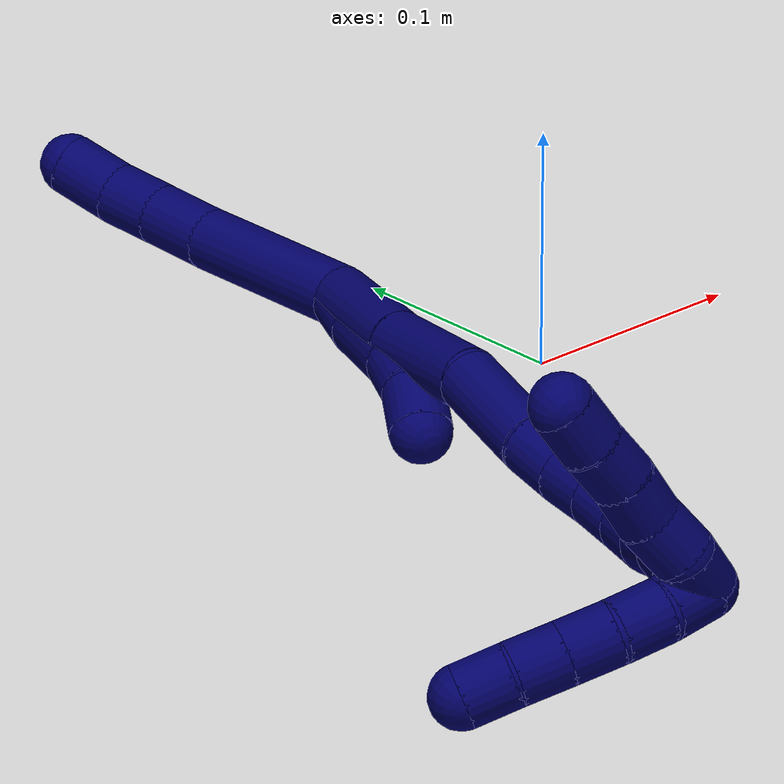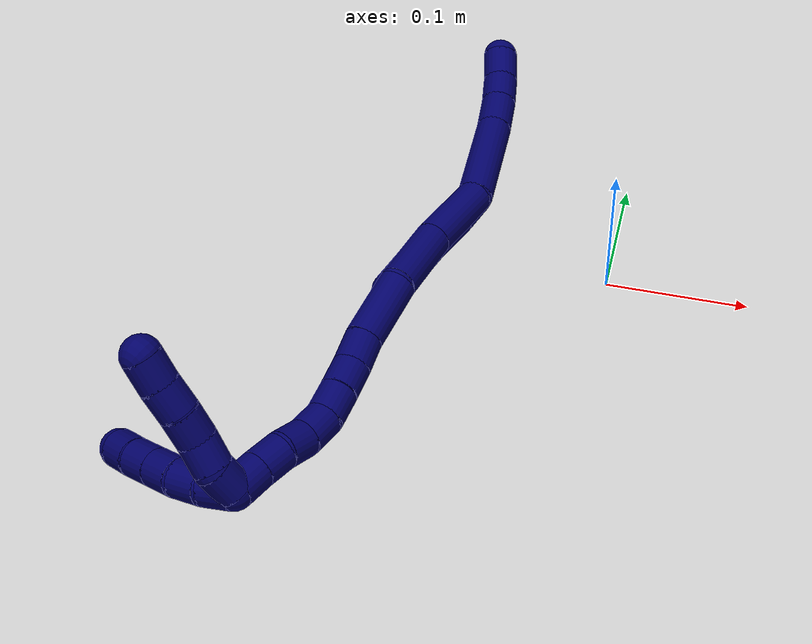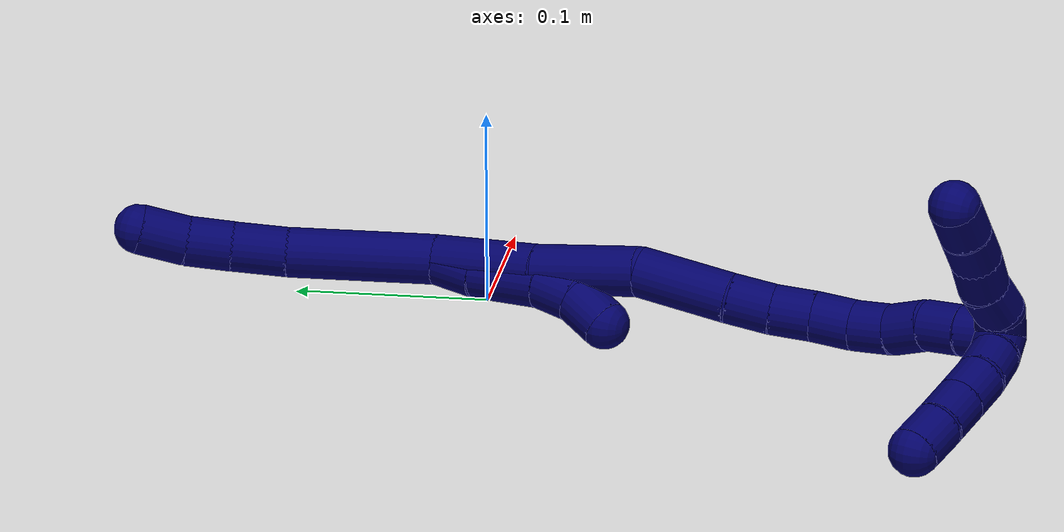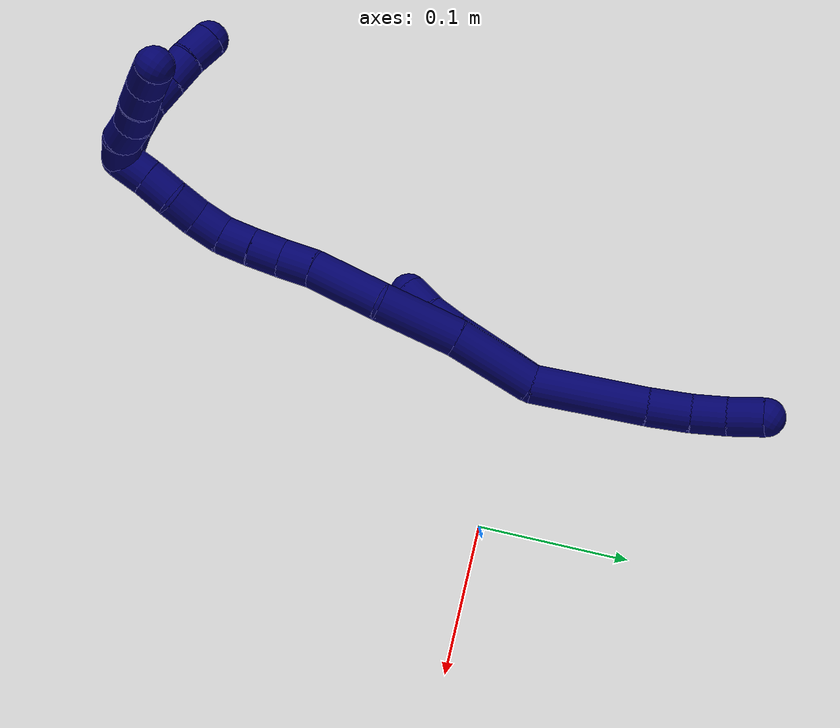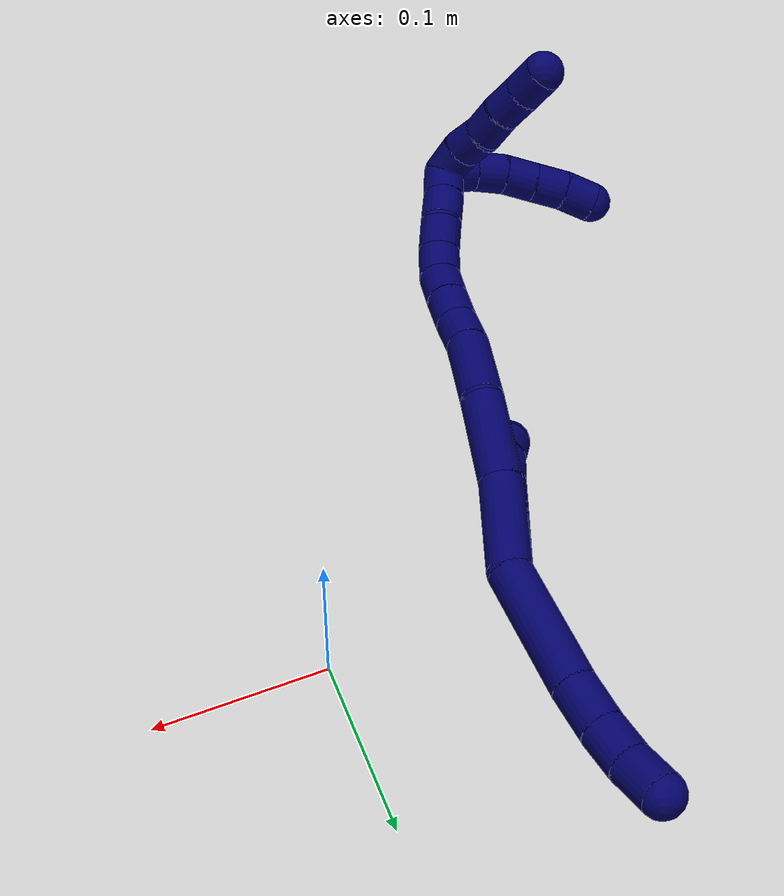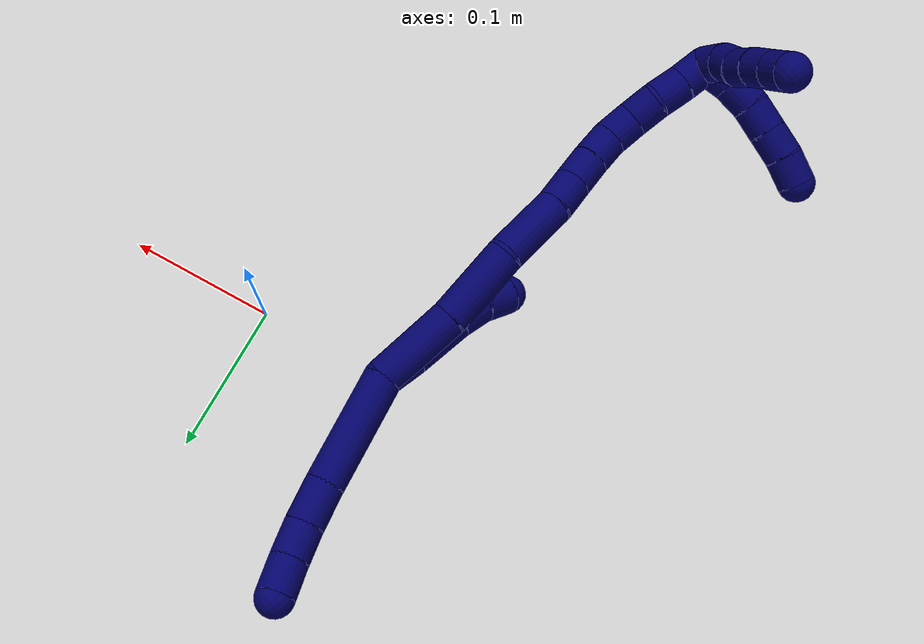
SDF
<sdf version="1.7">
 <world name="default">
  <model name="7">
   <static>0</static>
   <link name="7">
    <collision name="collision-cylinder-e_1_2_8">
     <pose>-0.007815 0.012279 -0.034353 -2.79832 -0.211029 1.09691</pose>
     <geometry><cylinder><radius>0.0125</radius><length>0.074618</length></cylinder></geometry>
     <surface>
      <friction><ode><mu>1.16</mu><mu2>1.16</mu2><slip1>0</slip1><slip2>0</slip2></ode></friction>
      <contact><ode><kp>1e+06</kp><kd>1</kd><max_vel>0</max_vel><min_depth>0.001</min_depth></ode></contact>
     </surface>
    </collision>
    <visual name="visual-cylinder-e_1_2_8">
     <pose>-0.007815 0.012279 -0.034353 -2.79832 -0.211029 1.09691</pose>
     <geometry><cylinder><radius>0.0125</radius><length>0.074618</length></cylinder></geometry>
     <material><ambient>0.003922 0 0.403922 1</ambient></material>
    </visual>
    <collision name="collision-cylinder-e_2_8_9">
     <pose>-0.017902 0.030134 -0.081321 -2.72537 -0.163243 0.739156</pose>
     <geometry><cylinder><radius>0.0125</radius><length>0.027958</length></cylinder></geometry>
     <surface>
      <friction><ode><mu>1.16</mu><mu2>1.16</mu2><slip1>0</slip1><slip2>0</slip2></ode></friction>
      <contact><ode><kp>1e+06</kp><kd>1</kd><max_vel>0</max_vel><min_depth>0.001</min_depth></ode></contact>
     </surface>
    </collision>
    <visual name="visual-cylinder-e_2_8_9">
     <pose>-0.017902 0.030134 -0.081321 -2.72537 -0.163243 0.739156</pose>
     <geometry><cylinder><radius>0.0125</radius><length>0.027958</length></cylinder></geometry>
     <material><ambient>0.003922 0 0.403922 1</ambient></material>
    </visual>
    <collision name="collision-cylinder-e_3_9_10">
     <pose>-0.021895 0.041173 -0.103977 -2.64333 -0.149444 0.572343</pose>
     <geometry><cylinder><radius>0.0125</radius><length>0.023118</length></cylinder></geometry>
     <surface>
      <friction><ode><mu>1.16</mu><mu2>1.16</mu2><slip1>0</slip1><slip2>0</slip2></ode></friction>
      <contact><ode><kp>1e+06</kp><kd>1</kd><max_vel>0</max_vel><min_depth>0.001</min_depth></ode></contact>
     </surface>
    </collision>
    <visual name="visual-cylinder-e_3_9_10">
     <pose>-0.021895 0.041173 -0.103977 -2.64333 -0.149444 0.572343</pose>
     <geometry><cylinder><radius>0.0125</radius><length>0.023118</length></cylinder></geometry>
     <material><ambient>0.003922 0 0.403922 1</ambient></material>
    </visual>
    <collision name="collision-cylinder-e_4_10_6">
     <pose>-0.024008 0.053639 -0.123942 -2.52701 -0.032296 0.10169</pose>
     <geometry><cylinder><radius>0.0125</radius><length>0.024306</length></cylinder></geometry>
     <surface>
      <friction><ode><mu>1.16</mu><mu2>1.16</mu2><slip1>0</slip1><slip2>0</slip2></ode></friction>
      <contact><ode><kp>1e+06</kp><kd>1</kd><max_vel>0</max_vel><min_depth>0.001</min_depth></ode></contact>
     </surface>
    </collision>
    <visual name="visual-cylinder-e_4_10_6">
     <pose>-0.024008 0.053639 -0.123942 -2.52701 -0.032296 0.10169</pose>
     <geometry><cylinder><radius>0.0125</radius><length>0.024306</length></cylinder></geometry>
     <material><ambient>0.003922 0 0.403922 1</ambient></material>
    </visual>
    <collision name="collision-cylinder-e_1_2_11">
     <pose>-0.000933 -0.00038 0.011569 0.032828 -0.080394 -0.00132</pose>
     <geometry><cylinder><radius>0.0125</radius><length>0.023225</length></cylinder></geometry>
     <surface>
      <friction><ode><mu>1.16</mu><mu2>1.16</mu2><slip1>0</slip1><slip2>0</slip2></ode></friction>
      <contact><ode><kp>1e+06</kp><kd>1</kd><max_vel>0</max_vel><min_depth>0.001</min_depth></ode></contact>
     </surface>
    </collision>
    <visual name="visual-cylinder-e_1_2_11">
     <pose>-0.000933 -0.00038 0.011569 0.032828 -0.080394 -0.00132</pose>
     <geometry><cylinder><radius>0.0125</radius><length>0.023225</length></cylinder></geometry>
     <material><ambient>0.003922 0 0.403922 1</ambient></material>
    </visual>
    <collision name="collision-cylinder-e_2_11_12">
     <pose>-0.000565 -0.000344 0.041103 -0.023119 0.072211 -0.000835</pose>
     <geometry><cylinder><radius>0.0125</radius><length>0.036034</length></cylinder></geometry>
     <surface>
      <friction><ode><mu>1.16</mu><mu2>1.16</mu2><slip1>0</slip1><slip2>0</slip2></ode></friction>
      <contact><ode><kp>1e+06</kp><kd>1</kd><max_vel>0</max_vel><min_depth>0.001</min_depth></ode></contact>
     </surface>
    </collision>
    <visual name="visual-cylinder-e_2_11_12">
     <pose>-0.000565 -0.000344 0.041103 -0.023119 0.072211 -0.000835</pose>
     <geometry><cylinder><radius>0.0125</radius><length>0.036034</length></cylinder></geometry>
     <material><ambient>0.003922 0 0.403922 1</ambient></material>
    </visual>
    <collision name="collision-cylinder-e_3_12_13">
     <pose>-0.000719 -0.000159 0.068981 0.023161 -0.145543 -0.001689</pose>
     <geometry><cylinder><radius>0.0125</radius><length>0.020042</length></cylinder></geometry>
     <surface>
      <friction><ode><mu>1.16</mu><mu2>1.16</mu2><slip1>0</slip1><slip2>0</slip2></ode></friction>
      <contact><ode><kp>1e+06</kp><kd>1</kd><max_vel>0</max_vel><min_depth>0.001</min_depth></ode></contact>
     </surface>
    </collision>
    <visual name="visual-cylinder-e_3_12_13">
     <pose>-0.000719 -0.000159 0.068981 0.023161 -0.145543 -0.001689</pose>
     <geometry><cylinder><radius>0.0125</radius><length>0.020042</length></cylinder></geometry>
     <material><ambient>0.003922 0 0.403922 1</ambient></material>
    </visual>
    <collision name="collision-cylinder-e_4_13_5">
     <pose>-0.006781 -0.000584 0.088158 0.021076 -0.461564 -0.004952</pose>
     <geometry><cylinder><radius>0.0125</radius><length>0.020698</length></cylinder></geometry>
     <surface>
      <friction><ode><mu>1.16</mu><mu2>1.16</mu2><slip1>0</slip1><slip2>0</slip2></ode></friction>
      <contact><ode><kp>1e+06</kp><kd>1</kd><max_vel>0</max_vel><min_depth>0.001</min_depth></ode></contact>
     </surface>
    </collision>
    <visual name="visual-cylinder-e_4_13_5">
     <pose>-0.006781 -0.000584 0.088158 0.021076 -0.461564 -0.004952</pose>
     <geometry><cylinder><radius>0.0125</radius><length>0.020698</length></cylinder></geometry>
     <material><ambient>0.003922 0 0.403922 1</ambient></material>
    </visual>
    <collision name="collision-cylinder-e_1_2_14">
     <pose>0.003426 0.000479 0.027573 -0.017388 0.123617 -0.001076</pose>
     <geometry><cylinder><radius>0.0125</radius><length>0.055578</length></cylinder></geometry>
     <surface>
      <friction><ode><mu>1.16</mu><mu2>1.16</mu2><slip1>0</slip1><slip2>0</slip2></ode></friction>
      <contact><ode><kp>1e+06</kp><kd>1</kd><max_vel>0</max_vel><min_depth>0.001</min_depth></ode></contact>
     </surface>
    </collision>
    <visual name="visual-cylinder-e_1_2_14">
     <pose>0.003426 0.000479 0.027573 -0.017388 0.123617 -0.001076</pose>
     <geometry><cylinder><radius>0.0125</radius><length>0.055578</length></cylinder></geometry>
     <material><ambient>0.003922 0 0.403922 1</ambient></material>
    </visual>
    <collision name="collision-cylinder-e_2_14_15">
     <pose>0.012283 -0.000933 0.081247 0.072344 0.204596 0.00743</pose>
     <geometry><cylinder><radius>0.0125</radius><length>0.053454</length></cylinder></geometry>
     <surface>
      <friction><ode><mu>1.16</mu><mu2>1.16</mu2><slip1>0</slip1><slip2>0</slip2></ode></friction>
      <contact><ode><kp>1e+06</kp><kd>1</kd><max_vel>0</max_vel><min_depth>0.001</min_depth></ode></contact>
     </surface>
    </collision>
    <visual name="visual-cylinder-e_2_14_15">
     <pose>0.012283 -0.000933 0.081247 0.072344 0.204596 0.00743</pose>
     <geometry><cylinder><radius>0.0125</radius><length>0.053454</length></cylinder></geometry>
     <material><ambient>0.003922 0 0.403922 1</ambient></material>
    </visual>
    <collision name="collision-cylinder-e_3_15_16">
     <pose>0.016833 -0.006868 0.130715 0.171353 -0.037118 -0.003188</pose>
     <geometry><cylinder><radius>0.0125</radius><length>0.04746</length></cylinder></geometry>
     <surface>
      <friction><ode><mu>1.16</mu><mu2>1.16</mu2><slip1>0</slip1><slip2>0</slip2></ode></friction>
      <contact><ode><kp>1e+06</kp><kd>1</kd><max_vel>0</max_vel><min_depth>0.001</min_depth></ode></contact>
     </surface>
    </collision>
    <visual name="visual-cylinder-e_3_15_16">
     <pose>0.016833 -0.006868 0.130715 0.171353 -0.037118 -0.003188</pose>
     <geometry><cylinder><radius>0.0125</radius><length>0.04746</length></cylinder></geometry>
     <material><ambient>0.003922 0 0.403922 1</ambient></material>
    </visual>
    <collision name="collision-cylinder-e_4_16_17">
     <pose>0.015967 -0.014085 0.164528 0.294917 0.001359 0.000202</pose>
     <geometry><cylinder><radius>0.0125</radius><length>0.021837</length></cylinder></geometry>
     <surface>
      <friction><ode><mu>1.16</mu><mu2>1.16</mu2><slip1>0</slip1><slip2>0</slip2></ode></friction>
      <contact><ode><kp>1e+06</kp><kd>1</kd><max_vel>0</max_vel><min_depth>0.001</min_depth></ode></contact>
     </surface>
    </collision>
    <visual name="visual-cylinder-e_4_16_17">
     <pose>0.015967 -0.014085 0.164528 0.294917 0.001359 0.000202</pose>
     <geometry><cylinder><radius>0.0125</radius><length>0.021837</length></cylinder></geometry>
     <material><ambient>0.003922 0 0.403922 1</ambient></material>
    </visual>
    <collision name="collision-cylinder-e_5_17_18">
     <pose>0.016846 -0.019581 0.185021 0.227204 0.08362 0.009546</pose>
     <geometry><cylinder><radius>0.0125</radius><length>0.020694</length></cylinder></geometry>
     <surface>
      <friction><ode><mu>1.16</mu><mu2>1.16</mu2><slip1>0</slip1><slip2>0</slip2></ode></friction>
      <contact><ode><kp>1e+06</kp><kd>1</kd><max_vel>0</max_vel><min_depth>0.001</min_depth></ode></contact>
     </surface>
    </collision>
    <visual name="visual-cylinder-e_5_17_18">
     <pose>0.016846 -0.019581 0.185021 0.227204 0.08362 0.009546</pose>
     <geometry><cylinder><radius>0.0125</radius><length>0.020694</length></cylinder></geometry>
     <material><ambient>0.003922 0 0.403922 1</ambient></material>
    </visual>
    <collision name="collision-cylinder-e_6_18_19">
     <pose>0.018033 -0.024015 0.205102 0.207367 0.031467 0.003275</pose>
     <geometry><cylinder><radius>0.0125</radius><length>0.02052</length></cylinder></geometry>
     <surface>
      <friction><ode><mu>1.16</mu><mu2>1.16</mu2><slip1>0</slip1><slip2>0</slip2></ode></friction>
      <contact><ode><kp>1e+06</kp><kd>1</kd><max_vel>0</max_vel><min_depth>0.001</min_depth></ode></contact>
     </surface>
    </collision>
    <visual name="visual-cylinder-e_6_18_19">
     <pose>0.018033 -0.024015 0.205102 0.207367 0.031467 0.003275</pose>
     <geometry><cylinder><radius>0.0125</radius><length>0.02052</length></cylinder></geometry>
     <material><ambient>0.003922 0 0.403922 1</ambient></material>
    </visual>
    <collision name="collision-cylinder-e_7_19_20">
     <pose>0.01946 -0.025644 0.225268 -0.047602 0.10845 -0.002584</pose>
     <geometry><cylinder><radius>0.0125</radius><length>0.020404</length></cylinder></geometry>
     <surface>
      <friction><ode><mu>1.16</mu><mu2>1.16</mu2><slip1>0</slip1><slip2>0</slip2></ode></friction>
      <contact><ode><kp>1e+06</kp><kd>1</kd><max_vel>0</max_vel><min_depth>0.001</min_depth></ode></contact>
     </surface>
    </collision>
    <visual name="visual-cylinder-e_7_19_20">
     <pose>0.01946 -0.025644 0.225268 -0.047602 0.10845 -0.002584</pose>
     <geometry><cylinder><radius>0.0125</radius><length>0.020404</length></cylinder></geometry>
     <material><ambient>0.003922 0 0.403922 1</ambient></material>
    </visual>
    <collision name="collision-cylinder-e_8_20_21">
     <pose>0.023352 -0.02282 0.244724 -0.245937 0.282188 -0.035106</pose>
     <geometry><cylinder><radius>0.0125</radius><length>0.020021</length></cylinder></geometry>
     <surface>
      <friction><ode><mu>1.16</mu><mu2>1.16</mu2><slip1>0</slip1><slip2>0</slip2></ode></friction>
      <contact><ode><kp>1e+06</kp><kd>1</kd><max_vel>0</max_vel><min_depth>0.001</min_depth></ode></contact>
     </surface>
    </collision>
    <visual name="visual-cylinder-e_8_20_21">
     <pose>0.023352 -0.02282 0.244724 -0.245937 0.282188 -0.035106</pose>
     <geometry><cylinder><radius>0.0125</radius><length>0.020021</length></cylinder></geometry>
     <material><ambient>0.003922 0 0.403922 1</ambient></material>
    </visual>
    <collision name="collision-cylinder-e_9_21_22">
     <pose>0.026789 -0.019031 0.263934 -0.145487 0.064923 -0.004733</pose>
     <geometry><cylinder><radius>0.0125</radius><length>0.020023</length></cylinder></geometry>
     <surface>
      <friction><ode><mu>1.16</mu><mu2>1.16</mu2><slip1>0</slip1><slip2>0</slip2></ode></friction>
      <contact><ode><kp>1e+06</kp><kd>1</kd><max_vel>0</max_vel><min_depth>0.001</min_depth></ode></contact>
     </surface>
    </collision>
    <visual name="visual-cylinder-e_9_21_22">
     <pose>0.026789 -0.019031 0.263934 -0.145487 0.064923 -0.004733</pose>
     <geometry><cylinder><radius>0.0125</radius><length>0.020023</length></cylinder></geometry>
     <material><ambient>0.003922 0 0.403922 1</ambient></material>
    </visual>
    <collision name="collision-cylinder-e_10_22_1">
     <pose>0.028459 -0.016697 0.283732 -0.089054 0.102157 -0.004556</pose>
     <geometry><cylinder><radius>0.0125</radius><length>0.020008</length></cylinder></geometry>
     <surface>
      <friction><ode><mu>1.16</mu><mu2>1.16</mu2><slip1>0</slip1><slip2>0</slip2></ode></friction>
      <contact><ode><kp>1e+06</kp><kd>1</kd><max_vel>0</max_vel><min_depth>0.001</min_depth></ode></contact>
     </surface>
    </collision>
    <visual name="visual-cylinder-e_10_22_1">
     <pose>0.028459 -0.016697 0.283732 -0.089054 0.102157 -0.004556</pose>
     <geometry><cylinder><radius>0.0125</radius><length>0.020008</length></cylinder></geometry>
     <material><ambient>0.003922 0 0.403922 1</ambient></material>
    </visual>
    <collision name="collision-cylinder-e_1_1_23">
     <pose>0.023544 -0.008271 0.296455 -1.21409 -0.635371 0.449051</pose>
     <geometry><cylinder><radius>0.0125</radius><length>0.02</length></cylinder></geometry>
     <surface>
      <friction><ode><mu>1.16</mu><mu2>1.16</mu2><slip1>0</slip1><slip2>0</slip2></ode></friction>
      <contact><ode><kp>1e+06</kp><kd>1</kd><max_vel>0</max_vel><min_depth>0.001</min_depth></ode></contact>
     </surface>
    </collision>
    <visual name="visual-cylinder-e_1_1_23">
     <pose>0.023544 -0.008271 0.296455 -1.21409 -0.635371 0.449051</pose>
     <geometry><cylinder><radius>0.0125</radius><length>0.02</length></cylinder></geometry>
     <material><ambient>0.003922 0 0.403922 1</ambient></material>
    </visual>
    <collision name="collision-cylinder-e_2_23_24">
     <pose>0.011217 0.006892 0.300301 -1.43566 -0.693466 0.611278</pose>
     <geometry><cylinder><radius>0.0125</radius><length>0.02</length></cylinder></geometry>
     <surface>
      <friction><ode><mu>1.16</mu><mu2>1.16</mu2><slip1>0</slip1><slip2>0</slip2></ode></friction>
      <contact><ode><kp>1e+06</kp><kd>1</kd><max_vel>0</max_vel><min_depth>0.001</min_depth></ode></contact>
     </surface>
    </collision>
    <visual name="visual-cylinder-e_2_23_24">
     <pose>0.011217 0.006892 0.300301 -1.43566 -0.693466 0.611278</pose>
     <geometry><cylinder><radius>0.0125</radius><length>0.02</length></cylinder></geometry>
     <material><ambient>0.003922 0 0.403922 1</ambient></material>
    </visual>
    <collision name="collision-cylinder-e_3_24_25">
     <pose>-0.002167 0.021634 0.300718 -1.65754 -0.774346 0.836965</pose>
     <geometry><cylinder><radius>0.0125</radius><length>0.02</length></cylinder></geometry>
     <surface>
      <friction><ode><mu>1.16</mu><mu2>1.16</mu2><slip1>0</slip1><slip2>0</slip2></ode></friction>
      <contact><ode><kp>1e+06</kp><kd>1</kd><max_vel>0</max_vel><min_depth>0.001</min_depth></ode></contact>
     </surface>
    </collision>
    <visual name="visual-cylinder-e_3_24_25">
     <pose>-0.002167 0.021634 0.300718 -1.65754 -0.774346 0.836965</pose>
     <geometry><cylinder><radius>0.0125</radius><length>0.02</length></cylinder></geometry>
     <material><ambient>0.003922 0 0.403922 1</ambient></material>
    </visual>
    <collision name="collision-cylinder-e_4_25_26">
     <pose>-0.016089 0.035939 0.299469 -1.65824 -0.765469 0.828052</pose>
     <geometry><cylinder><radius>0.0125</radius><length>0.02</length></cylinder></geometry>
     <surface>
      <friction><ode><mu>1.16</mu><mu2>1.16</mu2><slip1>0</slip1><slip2>0</slip2></ode></friction>
      <contact><ode><kp>1e+06</kp><kd>1</kd><max_vel>0</max_vel><min_depth>0.001</min_depth></ode></contact>
     </surface>
    </collision>
    <visual name="visual-cylinder-e_4_25_26">
     <pose>-0.016089 0.035939 0.299469 -1.65824 -0.765469 0.828052</pose>
     <geometry><cylinder><radius>0.0125</radius><length>0.02</length></cylinder></geometry>
     <material><ambient>0.003922 0 0.403922 1</ambient></material>
    </visual>
    <collision name="collision-cylinder-e_5_26_4">
     <pose>-0.030519 0.049538 0.297243 -1.81455 -0.848383 1.04769</pose>
     <geometry><cylinder><radius>0.0125</radius><length>0.02</length></cylinder></geometry>
     <surface>
      <friction><ode><mu>1.16</mu><mu2>1.16</mu2><slip1>0</slip1><slip2>0</slip2></ode></friction>
      <contact><ode><kp>1e+06</kp><kd>1</kd><max_vel>0</max_vel><min_depth>0.001</min_depth></ode></contact>
     </surface>
    </collision>
    <visual name="visual-cylinder-e_5_26_4">
     <pose>-0.030519 0.049538 0.297243 -1.81455 -0.848383 1.04769</pose>
     <geometry><cylinder><radius>0.0125</radius><length>0.02</length></cylinder></geometry>
     <material><ambient>0.003922 0 0.403922 1</ambient></material>
    </visual>
    <collision name="collision-cylinder-e_1_1_27">
     <pose>0.034451 -0.007255 0.295073 -1.40534 0.520407 -0.443519</pose>
     <geometry><cylinder><radius>0.0125</radius><length>0.02</length></cylinder></geometry>
     <surface>
      <friction><ode><mu>1.16</mu><mu2>1.16</mu2><slip1>0</slip1><slip2>0</slip2></ode></friction>
      <contact><ode><kp>1e+06</kp><kd>1</kd><max_vel>0</max_vel><min_depth>0.001</min_depth></ode></contact>
     </surface>
    </collision>
    <visual name="visual-cylinder-e_1_1_27">
     <pose>0.034451 -0.007255 0.295073 -1.40534 0.520407 -0.443519</pose>
     <geometry><cylinder><radius>0.0125</radius><length>0.02</length></cylinder></geometry>
     <material><ambient>0.003922 0 0.403922 1</ambient></material>
    </visual>
    <collision name="collision-cylinder-e_2_27_28">
     <pose>0.043273 0.010362 0.294739 -1.76302 0.395198 -0.476638</pose>
     <geometry><cylinder><radius>0.0125</radius><length>0.02</length></cylinder></geometry>
     <surface>
      <friction><ode><mu>1.16</mu><mu2>1.16</mu2><slip1>0</slip1><slip2>0</slip2></ode></friction>
      <contact><ode><kp>1e+06</kp><kd>1</kd><max_vel>0</max_vel><min_depth>0.001</min_depth></ode></contact>
     </surface>
    </collision>
    <visual name="visual-cylinder-e_2_27_28">
     <pose>0.043273 0.010362 0.294739 -1.76302 0.395198 -0.476638</pose>
     <geometry><cylinder><radius>0.0125</radius><length>0.02</length></cylinder></geometry>
     <material><ambient>0.003922 0 0.403922 1</ambient></material>
    </visual>
    <collision name="collision-cylinder-e_3_28_29">
     <pose>0.052339 0.027947 0.292628 -1.61159 0.548664 -0.570317</pose>
     <geometry><cylinder><radius>0.0125</radius><length>0.02</length></cylinder></geometry>
     <surface>
      <friction><ode><mu>1.16</mu><mu2>1.16</mu2><slip1>0</slip1><slip2>0</slip2></ode></friction>
      <contact><ode><kp>1e+06</kp><kd>1</kd><max_vel>0</max_vel><min_depth>0.001</min_depth></ode></contact>
     </surface>
    </collision>
    <visual name="visual-cylinder-e_3_28_29">
     <pose>0.052339 0.027947 0.292628 -1.61159 0.548664 -0.570317</pose>
     <geometry><cylinder><radius>0.0125</radius><length>0.02</length></cylinder></geometry>
     <material><ambient>0.003922 0 0.403922 1</ambient></material>
    </visual>
    <collision name="collision-cylinder-e_4_29_30">
     <pose>0.061783 0.045526 0.291913 -1.6113 0.436663 -0.454117</pose>
     <geometry><cylinder><radius>0.0125</radius><length>0.02</length></cylinder></geometry>
     <surface>
      <friction><ode><mu>1.16</mu><mu2>1.16</mu2><slip1>0</slip1><slip2>0</slip2></ode></friction>
      <contact><ode><kp>1e+06</kp><kd>1</kd><max_vel>0</max_vel><min_depth>0.001</min_depth></ode></contact>
     </surface>
    </collision>
    <visual name="visual-cylinder-e_4_29_30">
     <pose>0.061783 0.045526 0.291913 -1.6113 0.436663 -0.454117</pose>
     <geometry><cylinder><radius>0.0125</radius><length>0.02</length></cylinder></geometry>
     <material><ambient>0.003922 0 0.403922 1</ambient></material>
    </visual>
    <collision name="collision-cylinder-e_5_30_3">
     <pose>0.070755 0.063343 0.290704 -1.66662 0.494153 -0.541631</pose>
     <geometry><cylinder><radius>0.0125</radius><length>0.02</length></cylinder></geometry>
     <surface>
      <friction><ode><mu>1.16</mu><mu2>1.16</mu2><slip1>0</slip1><slip2>0</slip2></ode></friction>
      <contact><ode><kp>1e+06</kp><kd>1</kd><max_vel>0</max_vel><min_depth>0.001</min_depth></ode></contact>
     </surface>
    </collision>
    <visual name="visual-cylinder-e_5_30_3">
     <pose>0.070755 0.063343 0.290704 -1.66662 0.494153 -0.541631</pose>
     <geometry><cylinder><radius>0.0125</radius><length>0.02</length></cylinder></geometry>
     <material><ambient>0.003922 0 0.403922 1</ambient></material>
    </visual>
    <collision name="collision-sphere-3">
     <pose>0.075498 0.072107 0.289861 0 -0 0</pose>
     <geometry><sphere><radius>0.0125</radius></sphere></geometry>
     <surface>
      <friction><ode><mu>1.16</mu><mu2>1.16</mu2><slip1>0</slip1><slip2>0</slip2></ode></friction>
      <contact><ode><kp>1e+06</kp><kd>1</kd><max_vel>0</max_vel><min_depth>0.001</min_depth></ode></contact>
     </surface>
    </collision>
    <visual name="visual-sphere-3">
     <pose>0.075498 0.072107 0.289861 0 -0 0</pose>
     <geometry><sphere><radius>0.0125</radius></sphere></geometry>
     <material><ambient>0.003922 0 0.403922 1</ambient></material>
    </visual>
    <collision name="collision-sphere-30">
     <pose>0.066013 0.05458 0.291546 0 -0 0</pose>
     <geometry><sphere><radius>0.0125</radius></sphere></geometry>
     <surface>
      <friction><ode><mu>1.16</mu><mu2>1.16</mu2><slip1>0</slip1><slip2>0</slip2></ode></friction>
      <contact><ode><kp>1e+06</kp><kd>1</kd><max_vel>0</max_vel><min_depth>0.001</min_depth></ode></contact>
     </surface>
    </collision>
    <visual name="visual-sphere-30">
     <pose>0.066013 0.05458 0.291546 0 -0 0</pose>
     <geometry><sphere><radius>0.0125</radius></sphere></geometry>
     <material><ambient>0.003922 0 0.403922 1</ambient></material>
    </visual>
    <collision name="collision-sphere-29">
     <pose>0.057554 0.036472 0.29228 0 -0 0</pose>
     <geometry><sphere><radius>0.0125</radius></sphere></geometry>
     <surface>
      <friction><ode><mu>1.16</mu><mu2>1.16</mu2><slip1>0</slip1><slip2>0</slip2></ode></friction>
      <contact><ode><kp>1e+06</kp><kd>1</kd><max_vel>0</max_vel><min_depth>0.001</min_depth></ode></contact>
     </surface>
    </collision>
    <visual name="visual-sphere-29">
     <pose>0.057554 0.036472 0.29228 0 -0 0</pose>
     <geometry><sphere><radius>0.0125</radius></sphere></geometry>
     <material><ambient>0.003922 0 0.403922 1</ambient></material>
    </visual>
    <collision name="collision-sphere-28">
     <pose>0.047123 0.019421 0.292976 0 -0 0</pose>
     <geometry><sphere><radius>0.0125</radius></sphere></geometry>
     <surface>
      <friction><ode><mu>1.16</mu><mu2>1.16</mu2><slip1>0</slip1><slip2>0</slip2></ode></friction>
      <contact><ode><kp>1e+06</kp><kd>1</kd><max_vel>0</max_vel><min_depth>0.001</min_depth></ode></contact>
     </surface>
    </collision>
    <visual name="visual-sphere-28">
     <pose>0.047123 0.019421 0.292976 0 -0 0</pose>
     <geometry><sphere><radius>0.0125</radius></sphere></geometry>
     <material><ambient>0.003922 0 0.403922 1</ambient></material>
    </visual>
    <collision name="collision-sphere-27">
     <pose>0.039423 0.001303 0.296502 0 -0 0</pose>
     <geometry><sphere><radius>0.0125</radius></sphere></geometry>
     <surface>
      <friction><ode><mu>1.16</mu><mu2>1.16</mu2><slip1>0</slip1><slip2>0</slip2></ode></friction>
      <contact><ode><kp>1e+06</kp><kd>1</kd><max_vel>0</max_vel><min_depth>0.001</min_depth></ode></contact>
     </surface>
    </collision>
    <visual name="visual-sphere-27">
     <pose>0.039423 0.001303 0.296502 0 -0 0</pose>
     <geometry><sphere><radius>0.0125</radius></sphere></geometry>
     <material><ambient>0.003922 0 0.403922 1</ambient></material>
    </visual>
    <collision name="collision-sphere-4">
     <pose>-0.038022 0.055955 0.295648 0 -0 0</pose>
     <geometry><sphere><radius>0.0125</radius></sphere></geometry>
     <surface>
      <friction><ode><mu>1.16</mu><mu2>1.16</mu2><slip1>0</slip1><slip2>0</slip2></ode></friction>
      <contact><ode><kp>1e+06</kp><kd>1</kd><max_vel>0</max_vel><min_depth>0.001</min_depth></ode></contact>
     </surface>
    </collision>
    <visual name="visual-sphere-4">
     <pose>-0.038022 0.055955 0.295648 0 -0 0</pose>
     <geometry><sphere><radius>0.0125</radius></sphere></geometry>
     <material><ambient>0.003922 0 0.403922 1</ambient></material>
    </visual>
    <collision name="collision-sphere-26">
     <pose>-0.023017 0.043122 0.298839 0 -0 0</pose>
     <geometry><sphere><radius>0.0125</radius></sphere></geometry>
     <surface>
      <friction><ode><mu>1.16</mu><mu2>1.16</mu2><slip1>0</slip1><slip2>0</slip2></ode></friction>
      <contact><ode><kp>1e+06</kp><kd>1</kd><max_vel>0</max_vel><min_depth>0.001</min_depth></ode></contact>
     </surface>
    </collision>
    <visual name="visual-sphere-26">
     <pose>-0.023017 0.043122 0.298839 0 -0 0</pose>
     <geometry><sphere><radius>0.0125</radius></sphere></geometry>
     <material><ambient>0.003922 0 0.403922 1</ambient></material>
    </visual>
    <collision name="collision-sphere-25">
     <pose>-0.00916 0.028756 0.300099 0 -0 0</pose>
     <geometry><sphere><radius>0.0125</radius></sphere></geometry>
     <surface>
      <friction><ode><mu>1.16</mu><mu2>1.16</mu2><slip1>0</slip1><slip2>0</slip2></ode></friction>
      <contact><ode><kp>1e+06</kp><kd>1</kd><max_vel>0</max_vel><min_depth>0.001</min_depth></ode></contact>
     </surface>
    </collision>
    <visual name="visual-sphere-25">
     <pose>-0.00916 0.028756 0.300099 0 -0 0</pose>
     <geometry><sphere><radius>0.0125</radius></sphere></geometry>
     <material><ambient>0.003922 0 0.403922 1</ambient></material>
    </visual>
    <collision name="collision-sphere-24">
     <pose>0.004825 0.014512 0.301337 0 -0 0</pose>
     <geometry><sphere><radius>0.0125</radius></sphere></geometry>
     <surface>
      <friction><ode><mu>1.16</mu><mu2>1.16</mu2><slip1>0</slip1><slip2>0</slip2></ode></friction>
      <contact><ode><kp>1e+06</kp><kd>1</kd><max_vel>0</max_vel><min_depth>0.001</min_depth></ode></contact>
     </surface>
    </collision>
    <visual name="visual-sphere-24">
     <pose>0.004825 0.014512 0.301337 0 -0 0</pose>
     <geometry><sphere><radius>0.0125</radius></sphere></geometry>
     <material><ambient>0.003922 0 0.403922 1</ambient></material>
    </visual>
    <collision name="collision-sphere-23">
     <pose>0.017609 -0.000729 0.299265 0 -0 0</pose>
     <geometry><sphere><radius>0.0125</radius></sphere></geometry>
     <surface>
      <friction><ode><mu>1.16</mu><mu2>1.16</mu2><slip1>0</slip1><slip2>0</slip2></ode></friction>
      <contact><ode><kp>1e+06</kp><kd>1</kd><max_vel>0</max_vel><min_depth>0.001</min_depth></ode></contact>
     </surface>
    </collision>
    <visual name="visual-sphere-23">
     <pose>0.017609 -0.000729 0.299265 0 -0 0</pose>
     <geometry><sphere><radius>0.0125</radius></sphere></geometry>
     <material><ambient>0.003922 0 0.403922 1</ambient></material>
    </visual>
    <collision name="collision-sphere-1">
     <pose>0.029479 -0.015812 0.293644 0 -0 0</pose>
     <geometry><sphere><radius>0.0125</radius></sphere></geometry>
     <surface>
      <friction><ode><mu>1.16</mu><mu2>1.16</mu2><slip1>0</slip1><slip2>0</slip2></ode></friction>
      <contact><ode><kp>1e+06</kp><kd>1</kd><max_vel>0</max_vel><min_depth>0.001</min_depth></ode></contact>
     </surface>
    </collision>
    <visual name="visual-sphere-1">
     <pose>0.029479 -0.015812 0.293644 0 -0 0</pose>
     <geometry><sphere><radius>0.0125</radius></sphere></geometry>
     <material><ambient>0.003922 0 0.403922 1</ambient></material>
    </visual>
    <collision name="collision-sphere-22">
     <pose>0.027438 -0.017583 0.273819 0 -0 0</pose>
     <geometry><sphere><radius>0.0125</radius></sphere></geometry>
     <surface>
      <friction><ode><mu>1.16</mu><mu2>1.16</mu2><slip1>0</slip1><slip2>0</slip2></ode></friction>
      <contact><ode><kp>1e+06</kp><kd>1</kd><max_vel>0</max_vel><min_depth>0.001</min_depth></ode></contact>
     </surface>
    </collision>
    <visual name="visual-sphere-22">
     <pose>0.027438 -0.017583 0.273819 0 -0 0</pose>
     <geometry><sphere><radius>0.0125</radius></sphere></geometry>
     <material><ambient>0.003922 0 0.403922 1</ambient></material>
    </visual>
    <collision name="collision-sphere-21">
     <pose>0.026139 -0.020479 0.254049 0 -0 0</pose>
     <geometry><sphere><radius>0.0125</radius></sphere></geometry>
     <surface>
      <friction><ode><mu>1.16</mu><mu2>1.16</mu2><slip1>0</slip1><slip2>0</slip2></ode></friction>
      <contact><ode><kp>1e+06</kp><kd>1</kd><max_vel>0</max_vel><min_depth>0.001</min_depth></ode></contact>
     </surface>
    </collision>
    <visual name="visual-sphere-21">
     <pose>0.026139 -0.020479 0.254049 0 -0 0</pose>
     <geometry><sphere><radius>0.0125</radius></sphere></geometry>
     <material><ambient>0.003922 0 0.403922 1</ambient></material>
    </visual>
    <collision name="collision-sphere-11">
     <pose>-0.001865 -0.00076 0.023138 0 -0 0</pose>
     <geometry><sphere><radius>0.0125</radius></sphere></geometry>
     <surface>
      <friction><ode><mu>1.16</mu><mu2>1.16</mu2><slip1>0</slip1><slip2>0</slip2></ode></friction>
      <contact><ode><kp>1e+06</kp><kd>1</kd><max_vel>0</max_vel><min_depth>0.001</min_depth></ode></contact>
     </surface>
    </collision>
    <visual name="visual-sphere-11">
     <pose>-0.001865 -0.00076 0.023138 0 -0 0</pose>
     <geometry><sphere><radius>0.0125</radius></sphere></geometry>
     <material><ambient>0.003922 0 0.403922 1</ambient></material>
    </visual>
    <collision name="collision-sphere-6">
     <pose>-0.024401 0.060643 -0.133866 0 -0 0</pose>
     <geometry><sphere><radius>0.0125</radius></sphere></geometry>
     <surface>
      <friction><ode><mu>1.16</mu><mu2>1.16</mu2><slip1>0</slip1><slip2>0</slip2></ode></friction>
      <contact><ode><kp>1e+06</kp><kd>1</kd><max_vel>0</max_vel><min_depth>0.001</min_depth></ode></contact>
     </surface>
    </collision>
    <visual name="visual-sphere-6">
     <pose>-0.024401 0.060643 -0.133866 0 -0 0</pose>
     <geometry><sphere><radius>0.0125</radius></sphere></geometry>
     <material><ambient>0.003922 0 0.403922 1</ambient></material>
    </visual>
    <collision name="collision-sphere-10">
     <pose>-0.023616 0.046636 -0.114018 0 -0 0</pose>
     <geometry><sphere><radius>0.0125</radius></sphere></geometry>
     <surface>
      <friction><ode><mu>1.16</mu><mu2>1.16</mu2><slip1>0</slip1><slip2>0</slip2></ode></friction>
      <contact><ode><kp>1e+06</kp><kd>1</kd><max_vel>0</max_vel><min_depth>0.001</min_depth></ode></contact>
     </surface>
    </collision>
    <visual name="visual-sphere-10">
     <pose>-0.023616 0.046636 -0.114018 0 -0 0</pose>
     <geometry><sphere><radius>0.0125</radius></sphere></geometry>
     <material><ambient>0.003922 0 0.403922 1</ambient></material>
    </visual>
    <collision name="collision-sphere-9">
     <pose>-0.020174 0.035711 -0.093937 0 -0 0</pose>
     <geometry><sphere><radius>0.0125</radius></sphere></geometry>
     <surface>
      <friction><ode><mu>1.16</mu><mu2>1.16</mu2><slip1>0</slip1><slip2>0</slip2></ode></friction>
      <contact><ode><kp>1e+06</kp><kd>1</kd><max_vel>0</max_vel><min_depth>0.001</min_depth></ode></contact>
     </surface>
    </collision>
    <visual name="visual-sphere-9">
     <pose>-0.020174 0.035711 -0.093937 0 -0 0</pose>
     <geometry><sphere><radius>0.0125</radius></sphere></geometry>
     <material><ambient>0.003922 0 0.403922 1</ambient></material>
    </visual>
    <collision name="collision-sphere-2">
     <geometry><sphere><radius>0.0125</radius></sphere></geometry>
     <surface>
      <friction><ode><mu>1.16</mu><mu2>1.16</mu2><slip1>0</slip1><slip2>0</slip2></ode></friction>
      <contact><ode><kp>1e+06</kp><kd>1</kd><max_vel>0</max_vel><min_depth>0.001</min_depth></ode></contact>
     </surface>
    </collision>
    <visual name="visual-sphere-2">
     <geometry><sphere><radius>0.0125</radius></sphere></geometry>
     <material><ambient>0.003922 0 0.403922 1</ambient></material>
    </visual>
    <collision name="collision-sphere-19">
     <pose>0.018356 -0.026126 0.215137 0 -0 0</pose>
     <geometry><sphere><radius>0.0125</radius></sphere></geometry>
     <surface>
      <friction><ode><mu>1.16</mu><mu2>1.16</mu2><slip1>0</slip1><slip2>0</slip2></ode></friction>
      <contact><ode><kp>1e+06</kp><kd>1</kd><max_vel>0</max_vel><min_depth>0.001</min_depth></ode></contact>
     </surface>
    </collision>
    <visual name="visual-sphere-19">
     <pose>0.018356 -0.026126 0.215137 0 -0 0</pose>
     <geometry><sphere><radius>0.0125</radius></sphere></geometry>
     <material><ambient>0.003922 0 0.403922 1</ambient></material>
    </visual>
    <collision name="collision-sphere-8">
     <pose>-0.01563 0.024557 -0.068706 0 -0 0</pose>
     <geometry><sphere><radius>0.0125</radius></sphere></geometry>
     <surface>
      <friction><ode><mu>1.16</mu><mu2>1.16</mu2><slip1>0</slip1><slip2>0</slip2></ode></friction>
      <contact><ode><kp>1e+06</kp><kd>1</kd><max_vel>0</max_vel><min_depth>0.001</min_depth></ode></contact>
     </surface>
    </collision>
    <visual name="visual-sphere-8">
     <pose>-0.01563 0.024557 -0.068706 0 -0 0</pose>
     <geometry><sphere><radius>0.0125</radius></sphere></geometry>
     <material><ambient>0.003922 0 0.403922 1</ambient></material>
    </visual>
    <collision name="collision-sphere-12">
     <pose>0.000735 7.1e-05 0.059068 0 -0 0</pose>
     <geometry><sphere><radius>0.0125</radius></sphere></geometry>
     <surface>
      <friction><ode><mu>1.16</mu><mu2>1.16</mu2><slip1>0</slip1><slip2>0</slip2></ode></friction>
      <contact><ode><kp>1e+06</kp><kd>1</kd><max_vel>0</max_vel><min_depth>0.001</min_depth></ode></contact>
     </surface>
    </collision>
    <visual name="visual-sphere-12">
     <pose>0.000735 7.1e-05 0.059068 0 -0 0</pose>
     <geometry><sphere><radius>0.0125</radius></sphere></geometry>
     <material><ambient>0.003922 0 0.403922 1</ambient></material>
    </visual>
    <collision name="collision-sphere-13">
     <pose>-0.002172 -0.000388 0.078893 0 -0 0</pose>
     <geometry><sphere><radius>0.0125</radius></sphere></geometry>
     <surface>
      <friction><ode><mu>1.16</mu><mu2>1.16</mu2><slip1>0</slip1><slip2>0</slip2></ode></friction>
      <contact><ode><kp>1e+06</kp><kd>1</kd><max_vel>0</max_vel><min_depth>0.001</min_depth></ode></contact>
     </surface>
    </collision>
    <visual name="visual-sphere-13">
     <pose>-0.002172 -0.000388 0.078893 0 -0 0</pose>
     <geometry><sphere><radius>0.0125</radius></sphere></geometry>
     <material><ambient>0.003922 0 0.403922 1</ambient></material>
    </visual>
    <collision name="collision-sphere-5">
     <pose>-0.01139 -0.000779 0.097422 0 -0 0</pose>
     <geometry><sphere><radius>0.0125</radius></sphere></geometry>
     <surface>
      <friction><ode><mu>1.16</mu><mu2>1.16</mu2><slip1>0</slip1><slip2>0</slip2></ode></friction>
      <contact><ode><kp>1e+06</kp><kd>1</kd><max_vel>0</max_vel><min_depth>0.001</min_depth></ode></contact>
     </surface>
    </collision>
    <visual name="visual-sphere-5">
     <pose>-0.01139 -0.000779 0.097422 0 -0 0</pose>
     <geometry><sphere><radius>0.0125</radius></sphere></geometry>
     <material><ambient>0.003922 0 0.403922 1</ambient></material>
    </visual>
    <collision name="collision-sphere-14">
     <pose>0.006853 0.000959 0.055146 0 -0 0</pose>
     <geometry><sphere><radius>0.0125</radius></sphere></geometry>
     <surface>
      <friction><ode><mu>1.16</mu><mu2>1.16</mu2><slip1>0</slip1><slip2>0</slip2></ode></friction>
      <contact><ode><kp>1e+06</kp><kd>1</kd><max_vel>0</max_vel><min_depth>0.001</min_depth></ode></contact>
     </surface>
    </collision>
    <visual name="visual-sphere-14">
     <pose>0.006853 0.000959 0.055146 0 -0 0</pose>
     <geometry><sphere><radius>0.0125</radius></sphere></geometry>
     <material><ambient>0.003922 0 0.403922 1</ambient></material>
    </visual>
    <collision name="collision-sphere-15">
     <pose>0.017713 -0.002824 0.107348 0 -0 0</pose>
     <geometry><sphere><radius>0.0125</radius></sphere></geometry>
     <surface>
      <friction><ode><mu>1.16</mu><mu2>1.16</mu2><slip1>0</slip1><slip2>0</slip2></ode></friction>
      <contact><ode><kp>1e+06</kp><kd>1</kd><max_vel>0</max_vel><min_depth>0.001</min_depth></ode></contact>
     </surface>
    </collision>
    <visual name="visual-sphere-15">
     <pose>0.017713 -0.002824 0.107348 0 -0 0</pose>
     <geometry><sphere><radius>0.0125</radius></sphere></geometry>
     <material><ambient>0.003922 0 0.403922 1</ambient></material>
    </visual>
    <collision name="collision-sphere-16">
     <pose>0.015952 -0.010911 0.154081 0 -0 0</pose>
     <geometry><sphere><radius>0.0125</radius></sphere></geometry>
     <surface>
      <friction><ode><mu>1.16</mu><mu2>1.16</mu2><slip1>0</slip1><slip2>0</slip2></ode></friction>
      <contact><ode><kp>1e+06</kp><kd>1</kd><max_vel>0</max_vel><min_depth>0.001</min_depth></ode></contact>
     </surface>
    </collision>
    <visual name="visual-sphere-16">
     <pose>0.015952 -0.010911 0.154081 0 -0 0</pose>
     <geometry><sphere><radius>0.0125</radius></sphere></geometry>
     <material><ambient>0.003922 0 0.403922 1</ambient></material>
    </visual>
    <collision name="collision-sphere-17">
     <pose>0.015982 -0.017258 0.174975 0 -0 0</pose>
     <geometry><sphere><radius>0.0125</radius></sphere></geometry>
     <surface>
      <friction><ode><mu>1.16</mu><mu2>1.16</mu2><slip1>0</slip1><slip2>0</slip2></ode></friction>
      <contact><ode><kp>1e+06</kp><kd>1</kd><max_vel>0</max_vel><min_depth>0.001</min_depth></ode></contact>
     </surface>
    </collision>
    <visual name="visual-sphere-17">
     <pose>0.015982 -0.017258 0.174975 0 -0 0</pose>
     <geometry><sphere><radius>0.0125</radius></sphere></geometry>
     <material><ambient>0.003922 0 0.403922 1</ambient></material>
    </visual>
    <collision name="collision-sphere-18">
     <pose>0.01771 -0.021903 0.195067 0 -0 0</pose>
     <geometry><sphere><radius>0.0125</radius></sphere></geometry>
     <surface>
      <friction><ode><mu>1.16</mu><mu2>1.16</mu2><slip1>0</slip1><slip2>0</slip2></ode></friction>
      <contact><ode><kp>1e+06</kp><kd>1</kd><max_vel>0</max_vel><min_depth>0.001</min_depth></ode></contact>
     </surface>
    </collision>
    <visual name="visual-sphere-18">
     <pose>0.01771 -0.021903 0.195067 0 -0 0</pose>
     <geometry><sphere><radius>0.0125</radius></sphere></geometry>
     <material><ambient>0.003922 0 0.403922 1</ambient></material>
    </visual>
    <collision name="collision-sphere-20">
     <pose>0.020564 -0.025161 0.235399 0 -0 0</pose>
     <geometry><sphere><radius>0.0125</radius></sphere></geometry>
     <surface>
      <friction><ode><mu>1.16</mu><mu2>1.16</mu2><slip1>0</slip1><slip2>0</slip2></ode></friction>
      <contact><ode><kp>1e+06</kp><kd>1</kd><max_vel>0</max_vel><min_depth>0.001</min_depth></ode></contact>
     </surface>
    </collision>
    <visual name="visual-sphere-20">
     <pose>0.020564 -0.025161 0.235399 0 -0 0</pose>
     <geometry><sphere><radius>0.0125</radius></sphere></geometry>
     <material><ambient>0.003922 0 0.403922 1</ambient></material>
    </visual>
    <inertial>
     <pose>0.009714 0.007521 0.130741 0 -0 0</pose>
     <mass>0.75</mass>
     <inertia><ixx>0.000128</ixx><ixy>0</ixy><ixz>0</ixz><iyy>0.000101</iyy><iyz>0</iyz><izz>1e-06</izz></inertia>
    </inertial>
   </link>
   <pose>-0.099149 0.009983 0.056113 1.68477 -1.08897 -0.469686</pose>
  </model>
 </world>
</sdf>
